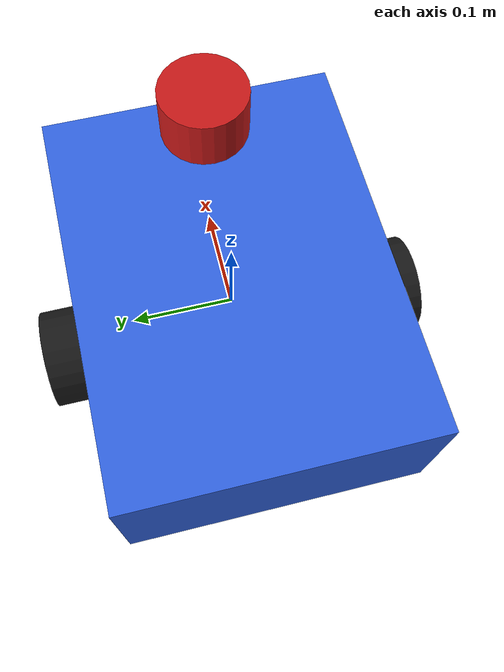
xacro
<?xml version="1.0"?>
<robot name="my_robot" xmlns:xacro="http://www.ros.org/wiki/xacro">

  <xacro:property name="chassis_length" value="0.4"/>
  <xacro:property name="chassis_width"  value="0.3"/>
  <xacro:property name="chassis_height" value="0.15"/>
  <xacro:property name="chassis_mass"   value="5.0"/>

  <link name="base_link"/>

  <joint name="chassis_joint" type="fixed">
    <parent link="base_link"/>
    <child link="chassis"/>
    <origin xyz="0 0 0" rpy="0 0 0"/>
  </joint>

  <link name="chassis">
    <visual>
      <origin xyz="0 0 0" rpy="0 0 0"/>
      <geometry>
        <box size="${chassis_length} ${chassis_width} ${chassis_height}"/>
      </geometry>
      <material name="blue">
        <color rgba="0.2 0.4 0.9 1"/>
      </material>
    </visual>
    <collision>
      <origin xyz="0 0 0" rpy="0 0 0"/>
      <geometry>
        <box size="${chassis_length} ${chassis_width} ${chassis_height}"/>
      </geometry>
    </collision>
    <inertial>
      <mass value="${chassis_mass}"/>
      <origin xyz="0 0 0"/>
      <inertia ixx="0.05" ixy="0" ixz="0" iyy="0.08" iyz="0" izz="0.1"/>
    </inertial>
  </link>

  <!-- ===== Wheel properties ===== -->
  <xacro:property name="wheel_radius"  value="0.05"/>
  <xacro:property name="wheel_width"   value="0.04"/>
  <xacro:property name="wheel_mass"    value="0.5"/>
  <xacro:property name="wheel_ygap"    value="0.025"/>
  <xacro:property name="wheel_zoff"    value="0.05"/>
  <xacro:property name="wheel_xoff"    value="0.12"/>

  <!-- ===== Wheel macro ===== -->
  <xacro:macro name="wheel" params="prefix x_reflect y_reflect">
    <link name="${prefix}_wheel">
      <visual>
        <origin xyz="0 0 0" rpy="${pi/2} 0 0"/>
        <geometry>
          <cylinder radius="${wheel_radius}" length="${wheel_width}"/>
        </geometry>
        <material name="black">
          <color rgba="0.1 0.1 0.1 1"/>
        </material>
      </visual>
      <collision>
        <origin xyz="0 0 0" rpy="${pi/2} 0 0"/>
        <geometry>
          <cylinder radius="${wheel_radius}" length="${wheel_width}"/>
        </geometry>
      </collision>
      <inertial>
        <mass value="${wheel_mass}"/>
        <origin xyz="0 0 0"/>
        <inertia ixx="0.001" ixy="0" ixz="0" iyy="0.001" iyz="0" izz="0.001"/>
      </inertial>
    </link>

    <joint name="${prefix}_wheel_joint" type="continuous">
      <parent link="chassis"/>
      <child link="${prefix}_wheel"/>
      <origin xyz="${x_reflect*wheel_xoff} ${y_reflect*(chassis_width/2 + wheel_ygap)} ${-wheel_zoff}"
              rpy="0 0 0"/>
      <axis xyz="0 1 0"/>
    </joint>
  </xacro:macro>

  <xacro:wheel prefix="left"  x_reflect="0" y_reflect="1"/>
  <xacro:wheel prefix="right" x_reflect="0" y_reflect="-1"/>

  <!-- ===== Caster wheel ===== -->
  <link name="caster_wheel">
    <visual>
      <geometry>
        <sphere radius="${wheel_radius}"/>
      </geometry>
      <material name="black"/>
    </visual>
    <collision>
      <geometry>
        <sphere radius="${wheel_radius}"/>
      </geometry>
    </collision>
    <inertial>
      <mass value="0.1"/>
      <origin xyz="0 0 0"/>
      <inertia ixx="0.0001" ixy="0" ixz="0" iyy="0.0001" iyz="0" izz="0.0001"/>
    </inertial>
  </link>

  <joint name="caster_wheel_joint" type="fixed">
    <parent link="chassis"/>
    <child link="caster_wheel"/>
    <origin xyz="${-wheel_xoff} 0 ${-wheel_zoff}" rpy="0 0 0"/>
  </joint>

  <!-- ===== Gazebo material + friction overrides ===== -->
  <gazebo reference="chassis">
    <material>Gazebo/Blue</material>
  </gazebo>

  <gazebo reference="left_wheel">
    <mu1>1.0</mu1>
    <mu2>1.0</mu2>
    <material>Gazebo/Black</material>
  </gazebo>

  <gazebo reference="right_wheel">
    <mu1>1.0</mu1>
    <mu2>1.0</mu2>
    <material>Gazebo/Black</material>
  </gazebo>

  <gazebo reference="caster_wheel">
    <mu1>0.0</mu1>
    <mu2>0.0</mu2>
    <material>Gazebo/Black</material>
  </gazebo>

  <!-- ===== Differential drive plugin (single copy) ===== -->
  <gazebo>
    <plugin filename="gz-sim-diff-drive-system"
            name="gz::sim::systems::DiffDrive">
      <left_joint>left_wheel_joint</left_joint>
      <right_joint>right_wheel_joint</right_joint>

      <wheel_separation>${2*(chassis_width/2 + wheel_ygap)}</wheel_separation>
      <wheel_radius>${wheel_radius}</wheel_radius>

      <max_linear_acceleration>1.0</max_linear_acceleration>

      <topic>cmd_vel</topic>
      <odom_topic>odom</odom_topic>
      <tf_topic>/tf</tf_topic>
      <frame_id>odom</frame_id>
      <child_frame_id>base_link</child_frame_id>
      <odom_publish_frequency>50</odom_publish_frequency>
    </plugin>

    <plugin filename="gz-sim-joint-state-publisher-system"
            name="gz::sim::systems::JointStatePublisher">
      <topic>joint_states</topic>
    </plugin>
  </gazebo>

  <!-- ===== Lidar properties ===== -->
  <xacro:property name="lidar_radius" value="0.04"/>
  <xacro:property name="lidar_length" value="0.05"/>
  <xacro:property name="lidar_x" value="0.10"/>
  <xacro:property name="lidar_z" value="0.18"/>

  <link name="lidar_link">
    <visual>
      <geometry>
        <cylinder radius="${lidar_radius}" length="${lidar_length}"/>
      </geometry>
      <material name="red">
        <color rgba="0.8 0.1 0.1 1"/>
      </material>
    </visual>
    <collision>
      <geometry>
        <cylinder radius="${lidar_radius}" length="${lidar_length}"/>
      </geometry>
    </collision>
    <inertial>
      <mass value="0.1"/>
      <origin xyz="0 0 0"/>
      <inertia ixx="0.0001" ixy="0" ixz="0" iyy="0.0001" iyz="0" izz="0.0001"/>
    </inertial>
  </link>

  <joint name="lidar_joint" type="fixed">
    <parent link="chassis"/>
    <child link="lidar_link"/>
    <origin xyz="${lidar_x} 0 ${lidar_z}" rpy="0 0 0"/>
  </joint>

  <!-- Prevents URDF->SDF fixed-joint lumping so the sensor keeps its own
       "lidar_link" frame instead of being merged into "base_link" -->
  <gazebo reference="lidar_joint">
    <disableFixedJointLumping>true</disableFixedJointLumping>
    <preserveFixedJoint>true</preserveFixedJoint>
  </gazebo>

  <gazebo reference="lidar_link">
    <sensor name="lidar" type="gpu_lidar">
      <pose>0 0 0 0 0 0</pose>
      <topic>scan</topic>
      <update_rate>10</update_rate>
      <ray>
        <scan>
          <horizontal>
            <samples>360</samples>
            <resolution>1.0</resolution>
            <min_angle>-3.14159</min_angle>
            <max_angle>3.14159</max_angle>
          </horizontal>
        </scan>
        <range>
          <min>0.12</min>
          <max>10.0</max>
          <resolution>0.01</resolution>
        </range>
      </ray>
      <always_on>true</always_on>
      <visualize>true</visualize>
    </sensor>
  </gazebo>

  <!-- ===== Camera properties ===== -->
  <xacro:property name="camera_x" value="0.15"/>
  <xacro:property name="camera_z" value="0.05"/>

  <link name="camera_link">
    <visual>
      <geometry>
        <box size="0.02 0.05 0.02"/>
      </geometry>
      <material name="black"/>
    </visual>
    <collision>
      <geometry>
        <box size="0.02 0.05 0.02"/>
      </geometry>
    </collision>
    <inertial>
      <mass value="0.05"/>
      <origin xyz="0 0 0"/>
      <inertia ixx="0.00001" ixy="0" ixz="0" iyy="0.00001" iyz="0" izz="0.00001"/>
    </inertial>
  </link>

  <joint name="camera_joint" type="fixed">
    <parent link="chassis"/>
    <child link="camera_link"/>
    <origin xyz="${camera_x} 0 ${camera_z}" rpy="0 0 0"/>
  </joint>

  <gazebo reference="camera_joint">
    <disableFixedJointLumping>true</disableFixedJointLumping>
    <preserveFixedJoint>true</preserveFixedJoint>
  </gazebo>

  <gazebo reference="camera_link">
    <sensor name="camera" type="camera">
      <topic>camera/image_raw</topic>
      <update_rate>30</update_rate>
      <camera>
        <horizontal_fov>1.047</horizontal_fov>
        <image>
          <width>640</width>
          <height>480</height>
          <format>R8G8B8</format>
        </image>
        <clip>
          <near>0.1</near>
          <far>100</far>
        </clip>
      </camera>
      <always_on>true</always_on>
      <visualize>true</visualize>
    </sensor>
  </gazebo>

</robot>
